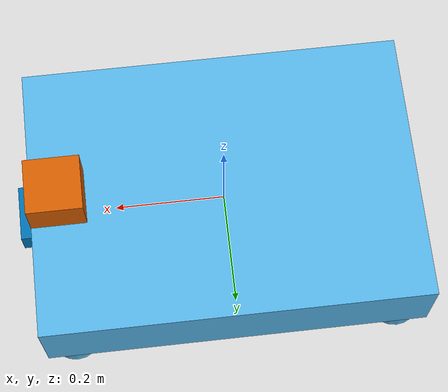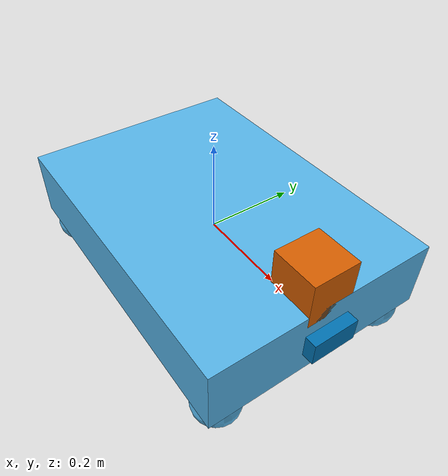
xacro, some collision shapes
<?xml version='1.0'?>

<robot name="my_robot" xmlns:xacro="http://www.ros.org/wiki/xacro">
<xacro:include filename="$(find my_robot)/urdf/my_robot.gazebo"/>
  <link name="robot_footprint"></link>

  <joint name="robot_footprint_joint" type="fixed">
    <origin xyz="0 0 0" rpy="0 0 0" />
    <parent link="robot_footprint"/>
    <child link="chassis" />
  </joint>
  <!--Robot chassis-->

  <link name='chassis'>
    <pose>0 0 0.1 0 0 0</pose>

    <inertial>
      <mass value="25.0"/>
      <origin xyz="0.0 0 0" rpy=" 0 0 0"/>
      <inertia
          ixx="0.1" ixy="0" ixz="0"
          iyy="0.1" iyz="0"
          izz="0.1"
      />
    </inertial>

    <collision name='collision'>
      <origin xyz="0 0 0" rpy=" 0 0 0"/>
      <geometry>
        <box size=".7 .5 .15"/>
      </geometry>
    </collision>

    <visual name='chassis_visual'>
      <origin xyz="0 0 0" rpy=" 0 0 0"/>
      <geometry>
        <box size=".7 .5 .15"/>
      </geometry>
    </visual>

    <!--Casters-->

    <collision name='rear_left_caster_collision'>
      <origin xyz="-0.3 -0.2 -0.1" rpy=" 0 0 0"/>
      <geometry>
        <sphere radius="0.0499"/>
      </geometry>
    </collision>

    <visual name='rear_left_caster_visual'>
      <origin xyz="-0.3 -0.2 -0.1" rpy=" 0 0 0"/>
      <geometry>
        <sphere radius="0.05"/>
      </geometry>
    </visual>

   <collision name='rear_right_caster_collision'>
      <origin xyz="0.3 0.2 -0.1" rpy=" 0 0 0"/>
      <geometry>
        <sphere radius="0.0499"/>
      </geometry>
    </collision>

    <visual name='rear_right_caster_visual'>
      <origin xyz="0.3 0.2 -0.1" rpy=" 0 0 0"/>
      <geometry>
        <sphere radius="0.05"/>
      </geometry>
    </visual>

    <collision name='front_left_caster_collision'>
      <origin xyz="0.3 -0.2 -0.1" rpy=" 0 0 0"/>
      <geometry>
        <sphere radius="0.0499"/>
      </geometry>
    </collision>

    <visual name='front_left_caster_visual'>
      <origin xyz="0.3 -0.2 -0.1" rpy=" 0 0 0"/>
      <geometry>
        <sphere radius="0.05"/>
      </geometry>
    </visual>

    <collision name='front_right_caster_collision'>
      <origin xyz="-0.3 0.2 -0.1" rpy=" 0 0 0"/>
      <geometry>
        <sphere radius="0.0499"/>
      </geometry>
    </collision>

    <visual name='front_right_caster_visual'>
      <origin xyz="-0.3 0.2 -0.1" rpy=" 0 0 0"/>
      <geometry>
        <sphere radius="0.05"/>
      </geometry>
    </visual>

  </link>

	<!--Drive wheels-->
  <link name="right_drive_wheel">
  	<inertial>
  	  <geometry>
        <cylinder length="0.05" radius="0.1"/>
      </geometry>
      <mass value="5.0" />
      <origin xyz="0.0 0 -0" rpy=" 0 1.5707 1.5707"/>
      <inertia
          ixx="0.1" ixy="0" ixz="0"
          iyy="0.1" iyz="0"
          izz="0.1"
      />
    </inertial>

    <visual>
      <mass value="5.0" />
      <origin xyz="0 0 -0" rpy=" 0 1.5707 1.5707"/>
      <geometry>
        <cylinder length="0.05" radius="0.1"/>
      </geometry>
    </visual>

    <collision>
      <mass value="5.0"/>
      <origin xyz="0 0 -0" rpy=" 0 1.5707 1.5707"/>
      <geometry>
        <cylinder length="0.05" radius="0.1"/>
      </geometry>
    </collision>

  </link>

  <link name="left_drive_wheel">
  	<inertial>
      <mass value="5.0"/>
      <origin xyz="0.0 -0 -0" rpy=" 0 1.5707 1.5707"/>
      <inertia
          ixx="0.1" ixy="0" ixz="0"
          iyy="0.1" iyz="0"
          izz="0.1"
      />
    </inertial>

    <visual>
      <origin xyz="0 0 0" rpy=" 0 1.5707 1.5707"/>
      <mass value="5.0"/>
      <geometry>
        <cylinder length="0.05" radius="0.1"/>
      </geometry>
    </visual>

    <collision>
      <origin xyz="0 0 0" rpy=" 0 1.5707 1.5707"/>
      <mass value="5.0"/>
      <geometry>
        <cylinder length="0.05" radius="0.1"/>
      </geometry>
    </collision>
  </link>

  <!--Joints to chassis-->
	<joint type="continuous" name="left_wheel_hinge">
	  <origin xyz="0 -0.2 -0.05" rpy="0 0 0"/>
	  <child link="left_drive_wheel"/>
	  <parent link="chassis"/>
	  <axis xyz="0 1 0" rpy="0 0 0"/>
	  <limit effort="10000" velocity="1000"/>
	  <dynamics damping="1.0" friction="1.0"/>
	</joint>

	<joint type="continuous" name="right_wheel_hinge">
	  <origin xyz="0 0.2 -0.05" rpy="0 0 0"/>
	  <child link="right_drive_wheel"/>
	  <parent link="chassis"/>
	  <axis xyz="0 1 0" rpy="0 0 0"/>
	  <limit effort="10000" velocity="1000"/>
	  <dynamics damping="1.0" friction="1.0"/>
	</joint>

  <!--Front Camera-->
  <link name="camera">

  	<inertial>
      <mass value="0.1"/>
      <origin xyz="0 0 0" rpy=" 0 0 0"/>
      <inertia
          ixx="1e-6" ixy="0" ixz="0"
          iyy="1e-6" iyz="0"
          izz="1e-6"
      />
    </inertial>

    <collision name='camera_collision'>
      <origin xyz="0 0 0" rpy=" 0 0 0"/>
      <geometry>
  		<box size=".05 .1 .05"/>
  	  </geometry>
    </collision>

    <visual name='camera_visual'>
      <origin xyz="0.0 0 0" rpy=" 0 0 0"/>
      <geometry>
  		<box size=".05 .1 .05"/>
  	  </geometry>
    </visual>
  </link>

  <!--Camera Joint-->
  <joint name="camera_joint" type="fixed">
  	<origin xyz="0.35 0 0" rpy="0 0 0" />
  	<parent link="chassis" />
  	<child link="camera" />
  	<axis xyz="0 1 0" rpy="0 0 0" />
  </joint>

  <!--Lidar-->

  <link name="hokuyo">

  	<inertial>
      <mass value="1e-5"/>
      <origin xyz="0.0 0 0" rpy=" 0 0 0"/>
      <inertia
          ixx="1e-6" ixy="0" ixz="0"
          iyy="1e-6" iyz="0"
          izz="1e-6"
      />
    </inertial>

    <collision name='hokuyo_collision'>
      <origin xyz="0 0 0" rpy=" 0 0 0"/>
      <geometry>
  		<box size="0.1 0.1 0.1"/>
  	  </geometry>
    </collision>

    <visual name='hokuyo_visual'>
      <origin xyz="0 0 0" rpy=" 0 0 0"/>
      <geometry>
  		<mesh filename="package://my_robot/meshes/hokuyo.dae" />
  	  </geometry>
    </visual>

  </link>

  <!--LidarJoint-->

  <joint name="hokuyo_joint" type="fixed">
  	<origin xyz="0.3 0 0.1" rpy="0 0 0" />
  	<parent link="chassis" />
  	<child link="hokuyo" />
  	<axis xyz="0 1 0" rpy="0 0 0" />
  </joint>

</robot>
